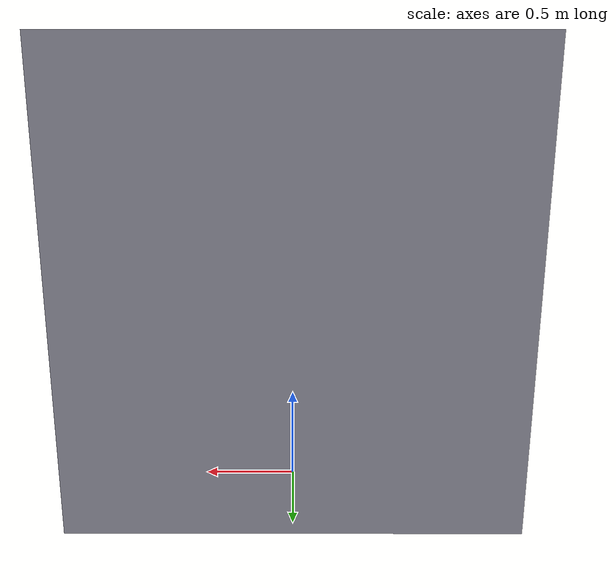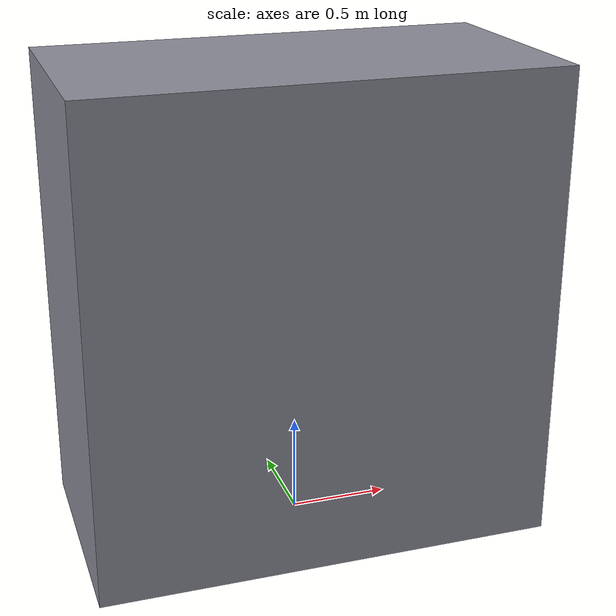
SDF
<?xml version="1.0"?>
<sdf version="1.6">
  <model name="aws_robomaker_warehouse_ShelfD_01">
    <static>true</static>
    <link name="link">
      <collision name="collision">
        <geometry>
          <box>
            <size>2.3 1.2 2.4</size>
          </box>
        </geometry>
      </collision>
      <visual name="visual">
        <pose>0 0 1.2 0 0 0</pose>
        <geometry>
          <box>
            <size>2.3 1.2 2.4</size>
          </box>
        </geometry>
        <material>
          <ambient>0.55 0.55 0.6 1</ambient>
          <diffuse>0.55 0.55 0.6 1</diffuse>
          <specular>0.1 0.1 0.1 1</specular>
        </material>
      </visual>
    </link>
  </model>
</sdf>
